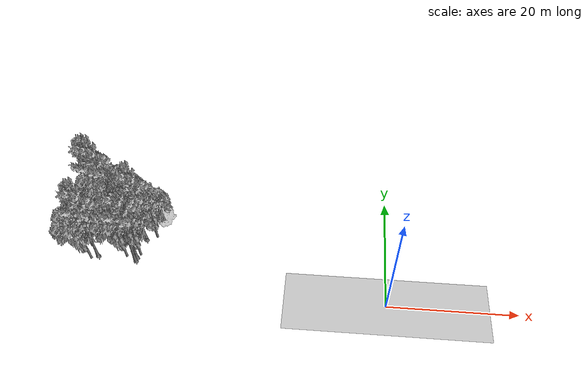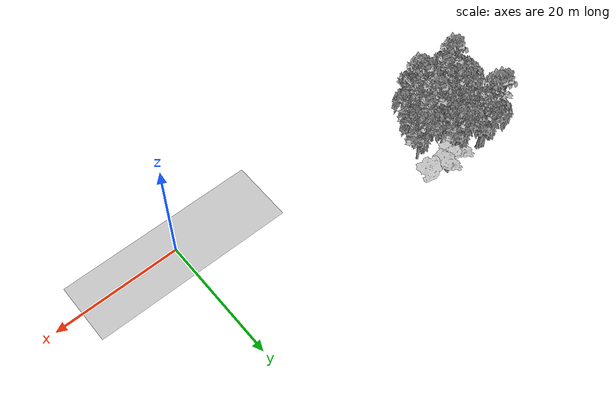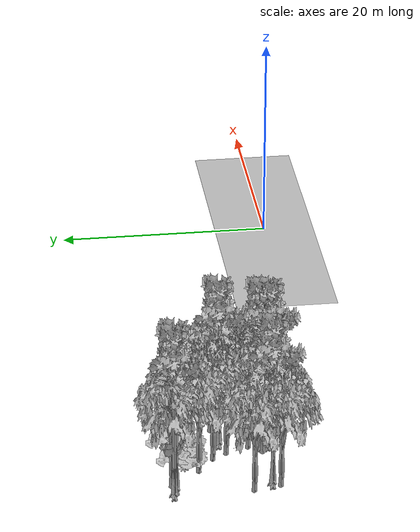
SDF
<sdf version="1.7">
 <world name="default">
  <model name="ground_plane">
   <static>1</static>
   <link name="link">
    <collision name="collision">
     <pose>-50 0 0 0 -0 0</pose>
     <geometry><plane><normal>0 0 1</normal><size>100 100</size></plane></geometry>
     <surface><contact><ode><min_depth>0.01</min_depth><max_vel>0</max_vel></ode></contact></surface>
    </collision>
    <visual name="grass">
     <cast_shadows>0</cast_shadows>
     <geometry>
      <mesh>
       <scale>0.5814285714285714 0.18142857142857144 0.1</scale>
       <uri>file://grass_plane/meshes/grass_plane.dae</uri>
      </mesh>
     </geometry>
    </visual>
   </link>
  </model>
  <model name="Tree 56">
   <static>1</static>
   <pose>-37.62864748694412 10.328856074521394 0 1.57079 -0 0</pose>
   <link name="link">
    <collision name="collision">
     <geometry><mesh><scale>3.5 5 3.5</scale><uri>model://tree_2/meshes/tree_2.obj</uri></mesh></geometry>
    </collision>
    <visual name="visual">
     <geometry><mesh><scale>3.5 5 3.5</scale><uri>model://tree_2/meshes/tree_2.obj</uri></mesh></geometry>
    </visual>
   </link>
  </model>
  <model name="Tree 103">
   <static>1</static>
   <pose>-42.42489306320966 10.706357983682288 0 1.57079 -0 0</pose>
   <link name="link">
    <collision name="collision">
     <geometry><mesh><scale>3.5 5 3.5</scale><uri>model://tree_2/meshes/tree_2.obj</uri></mesh></geometry>
    </collision>
    <visual name="visual">
     <geometry><mesh><scale>3.5 5 3.5</scale><uri>model://tree_2/meshes/tree_2.obj</uri></mesh></geometry>
    </visual>
   </link>
  </model>
  <model name="Tree 136">
   <static>1</static>
   <pose>-42.50503563733764 12.779383757334095 0 1.57079 -0 0</pose>
   <link name="link">
    <collision name="collision">
     <geometry><mesh><scale>3 2 3</scale><uri>model://tree_3/meshes/tree_3.obj</uri></mesh></geometry>
    </collision>
    <visual name="visual">
     <geometry><mesh><scale>3 2 3</scale><uri>model://tree_3/meshes/tree_3.obj</uri></mesh></geometry>
    </visual>
   </link>
  </model>
  <model name="Tree 159">
   <static>1</static>
   <pose>-39.29687122745849 9.799775164249663 0 1.57079 -0 0</pose>
   <link name="link">
    <collision name="collision">
     <geometry><mesh><scale>3.5 5 3.5</scale><uri>model://tree_9/meshes/tree_9.obj</uri></mesh></geometry>
    </collision>
    <visual name="visual">
     <geometry><mesh><scale>3.5 5 3.5</scale><uri>model://tree_9/meshes/tree_9.obj</uri></mesh></geometry>
    </visual>
   </link>
  </model>
  <model name="Tree 182">
   <static>1</static>
   <pose>-41.747075578381285 6.160275516731481 0 1.57079 -0 0</pose>
   <link name="link">
    <collision name="collision">
     <geometry><mesh><scale>3.5 5 3.5</scale><uri>model://tree_2/meshes/tree_2.obj</uri></mesh></geometry>
    </collision>
    <visual name="visual">
     <geometry><mesh><scale>3.5 5 3.5</scale><uri>model://tree_2/meshes/tree_2.obj</uri></mesh></geometry>
    </visual>
   </link>
  </model>
  <model name="Tree 190">
   <static>1</static>
   <pose>-47.95125119994099 7.772308627099971 0 1.57079 -0 0</pose>
   <link name="link">
    <collision name="collision">
     <geometry><mesh><scale>3.5 5 3.5</scale><uri>model://tree_2/meshes/tree_2.obj</uri></mesh></geometry>
    </collision>
    <visual name="visual">
     <geometry><mesh><scale>3.5 5 3.5</scale><uri>model://tree_2/meshes/tree_2.obj</uri></mesh></geometry>
    </visual>
   </link>
  </model>
  <model name="Tree 234">
   <static>1</static>
   <pose>-46.40562261801846 14.468697418646492 0 1.57079 -0 0</pose>
   <link name="link">
    <collision name="collision">
     <geometry><mesh><scale>3.5 5 3.5</scale><uri>model://tree_9/meshes/tree_9.obj</uri></mesh></geometry>
    </collision>
    <visual name="visual">
     <geometry><mesh><scale>3.5 5 3.5</scale><uri>model://tree_9/meshes/tree_9.obj</uri></mesh></geometry>
    </visual>
   </link>
  </model>
  <model name="Tree 267">
   <static>1</static>
   <pose>-44.28302007202953 12.189712550918 0 1.57079 -0 0</pose>
   <link name="link">
    <collision name="collision">
     <geometry><mesh><scale>3.5 5 3.5</scale><uri>model://tree_2/meshes/tree_2.obj</uri></mesh></geometry>
    </collision>
    <visual name="visual">
     <geometry><mesh><scale>3.5 5 3.5</scale><uri>model://tree_2/meshes/tree_2.obj</uri></mesh></geometry>
    </visual>
   </link>
  </model>
  <model name="Tree 295">
   <static>1</static>
   <pose>-39.56929031249872 6.620584488128486 0 1.57079 -0 0</pose>
   <link name="link">
    <collision name="collision">
     <geometry><mesh><scale>3.5 5 3.5</scale><uri>model://tree_2/meshes/tree_2.obj</uri></mesh></geometry>
    </collision>
    <visual name="visual">
     <geometry><mesh><scale>3.5 5 3.5</scale><uri>model://tree_2/meshes/tree_2.obj</uri></mesh></geometry>
    </visual>
   </link>
  </model>
  <model name="Tree 309">
   <static>1</static>
   <pose>-47.256732421977375 14.74727417292143 0 1.57079 -0 0</pose>
   <link name="link">
    <collision name="collision">
     <geometry><mesh><scale>3.5 5 3.5</scale><uri>model://tree_9/meshes/tree_9.obj</uri></mesh></geometry>
    </collision>
    <visual name="visual">
     <geometry><mesh><scale>3.5 5 3.5</scale><uri>model://tree_9/meshes/tree_9.obj</uri></mesh></geometry>
    </visual>
   </link>
  </model>
  <model name="Tree 364">
   <static>1</static>
   <pose>-47.39857306784986 5.352952053443126 0 1.57079 -0 0</pose>
   <link name="link">
    <collision name="collision">
     <geometry><mesh><scale>3.5 5 3.5</scale><uri>model://tree_2/meshes/tree_2.obj</uri></mesh></geometry>
    </collision>
    <visual name="visual">
     <geometry><mesh><scale>3.5 5 3.5</scale><uri>model://tree_2/meshes/tree_2.obj</uri></mesh></geometry>
    </visual>
   </link>
  </model>
  <model name="Tree 377">
   <static>1</static>
   <pose>-40.11753409005462 5.452353520553082 0 1.57079 -0 0</pose>
   <link name="link">
    <collision name="collision">
     <geometry><mesh><scale>3.5 5 3.5</scale><uri>model://tree_9/meshes/tree_9.obj</uri></mesh></geometry>
    </collision>
    <visual name="visual">
     <geometry><mesh><scale>3.5 5 3.5</scale><uri>model://tree_9/meshes/tree_9.obj</uri></mesh></geometry>
    </visual>
   </link>
  </model>
  <model name="Tree 379">
   <static>1</static>
   <pose>-46.40677634552353 14.85769535403336 0 1.57079 -0 0</pose>
   <link name="link">
    <collision name="collision">
     <geometry><mesh><scale>3.5 5 3.5</scale><uri>model://tree_2/meshes/tree_2.obj</uri></mesh></geometry>
    </collision>
    <visual name="visual">
     <geometry><mesh><scale>3.5 5 3.5</scale><uri>model://tree_2/meshes/tree_2.obj</uri></mesh></geometry>
    </visual>
   </link>
  </model>
  <model name="Tree 385">
   <static>1</static>
   <pose>-40.8200081952193 7.3390003366562375 0 1.57079 -0 0</pose>
   <link name="link">
    <collision name="collision">
     <geometry><mesh><scale>3.5 5 3.5</scale><uri>model://tree_2/meshes/tree_2.obj</uri></mesh></geometry>
    </collision>
    <visual name="visual">
     <geometry><mesh><scale>3.5 5 3.5</scale><uri>model://tree_2/meshes/tree_2.obj</uri></mesh></geometry>
    </visual>
   </link>
  </model>
  <model name="Tree 394">
   <static>1</static>
   <pose>-42.50881147290131 13.365371944418076 0 1.57079 -0 0</pose>
   <link name="link">
    <collision name="collision">
     <geometry><mesh><scale>3.5 5 3.5</scale><uri>model://tree_2/meshes/tree_2.obj</uri></mesh></geometry>
    </collision>
    <visual name="visual">
     <geometry><mesh><scale>3.5 5 3.5</scale><uri>model://tree_2/meshes/tree_2.obj</uri></mesh></geometry>
    </visual>
   </link>
  </model>
  <model name="Tree 460">
   <static>1</static>
   <pose>-43.35254428509914 13.414670336169447 0 1.57079 -0 0</pose>
   <link name="link">
    <collision name="collision">
     <geometry><mesh><scale>4 2.5 4</scale><uri>model://tree_1/meshes/tree_1.obj</uri></mesh></geometry>
    </collision>
    <visual name="visual">
     <geometry><mesh><scale>4 2.5 4</scale><uri>model://tree_1/meshes/tree_1.obj</uri></mesh></geometry>
    </visual>
   </link>
  </model>
  <model name="Tree 468">
   <static>1</static>
   <pose>-46.41177821532992 5.966167170483761 0 1.57079 -0 0</pose>
   <link name="link">
    <collision name="collision">
     <geometry><mesh><scale>3.5 5 3.5</scale><uri>model://tree_9/meshes/tree_9.obj</uri></mesh></geometry>
    </collision>
    <visual name="visual">
     <geometry><mesh><scale>3.5 5 3.5</scale><uri>model://tree_9/meshes/tree_9.obj</uri></mesh></geometry>
    </visual>
   </link>
  </model>
  <model name="Tree 470">
   <static>1</static>
   <pose>-40.05061706023788 6.108714855510989 0 1.57079 -0 0</pose>
   <link name="link">
    <collision name="collision">
     <geometry><mesh><scale>3.5 5 3.5</scale><uri>model://tree_9/meshes/tree_9.obj</uri></mesh></geometry>
    </collision>
    <visual name="visual">
     <geometry><mesh><scale>3.5 5 3.5</scale><uri>model://tree_9/meshes/tree_9.obj</uri></mesh></geometry>
    </visual>
   </link>
  </model>
  <model name="Tree 480">
   <static>1</static>
   <pose>-37.32024177099589 13.302017305956781 0 1.57079 -0 0</pose>
   <link name="link">
    <collision name="collision">
     <geometry><mesh><scale>3 2 3</scale><uri>model://tree_3/meshes/tree_3.obj</uri></mesh></geometry>
    </collision>
    <visual name="visual">
     <geometry><mesh><scale>3 2 3</scale><uri>model://tree_3/meshes/tree_3.obj</uri></mesh></geometry>
    </visual>
   </link>
  </model>
  <model name="Tree 507">
   <static>1</static>
   <pose>-40.235587410859395 14.000093134275549 0 1.57079 -0 0</pose>
   <link name="link">
    <collision name="collision">
     <geometry><mesh><scale>4 2.5 4</scale><uri>model://tree_1/meshes/tree_1.obj</uri></mesh></geometry>
    </collision>
    <visual name="visual">
     <geometry><mesh><scale>4 2.5 4</scale><uri>model://tree_1/meshes/tree_1.obj</uri></mesh></geometry>
    </visual>
   </link>
  </model>
  <model name="Tree 533">
   <static>1</static>
   <pose>-41.60631400509552 9.408051017208031 0 1.57079 -0 0</pose>
   <link name="link">
    <collision name="collision">
     <geometry><mesh><scale>3.5 5 3.5</scale><uri>model://tree_2/meshes/tree_2.obj</uri></mesh></geometry>
    </collision>
    <visual name="visual">
     <geometry><mesh><scale>3.5 5 3.5</scale><uri>model://tree_2/meshes/tree_2.obj</uri></mesh></geometry>
    </visual>
   </link>
  </model>
  <model name="Bush 2">
   <static>1</static>
   <pose>-39.684895317446866 14.649309643063862 0 1.57079 -0 0</pose>
   <link name="link">
    <collision name="collision">
     <geometry><mesh><scale>2 2 2</scale><uri>model://bush_2/meshes/bush_2.obj</uri></mesh></geometry>
     <surface><contact><collide_without_contact>false</collide_without_contact></contact></surface>
    </collision>
    <visual name="visual">
     <geometry><mesh><scale>2 2 2</scale><uri>model://bush_2/meshes/bush_2.obj</uri></mesh></geometry>
    </visual>
   </link>
  </model>
 </world>
</sdf>
